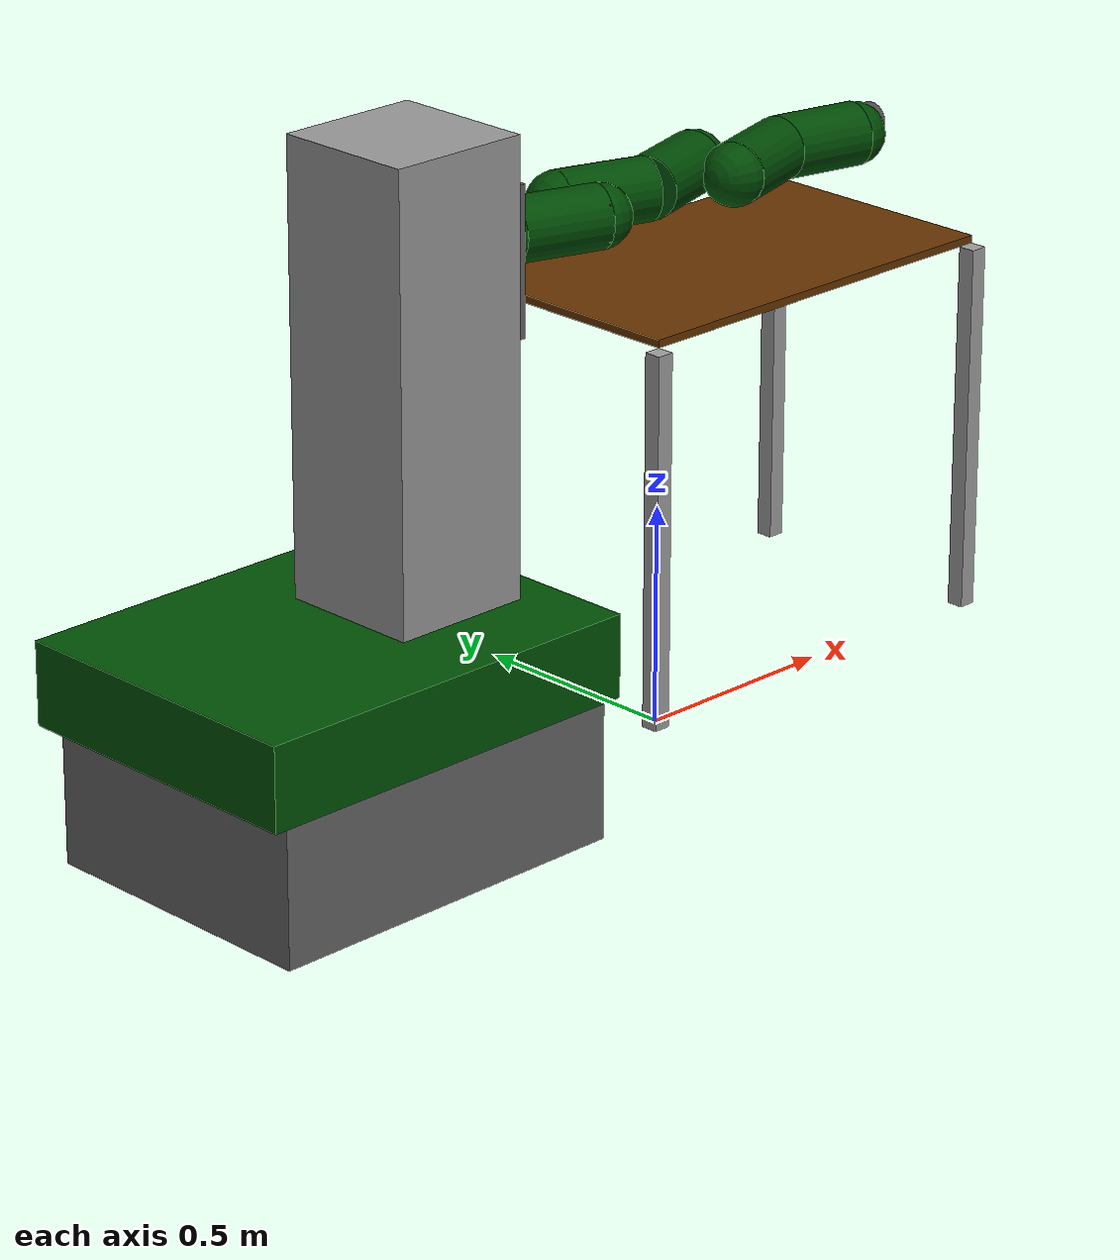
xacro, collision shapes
<?xml version="1.0"?>
<robot xmlns:xacro="http://www.ros.org/wiki/xacro" name="ics_lwr_enviroment">

    <!-- Include all models -->
    <xacro:include filename="$(find lwr_description)/model/kuka_lwr.urdf.xacro"/>

    <!-- CONSTANTS -->
    <xacro:property name="PI" value="3.14159265359" />

    <material name="Grey1">
        <color rgba="0.4 0.4 0.4 1.0"/>
    </material>

    <material name="Grey2">
        <color rgba="0.6 0.6 0.6 1.0"/>
    </material>

    <material name="DarkGreen1">
        <color rgba="0.0 0.32 0.02 1.0"/>
    </material>

    <!-- world -->
    <link name="world"/>

    <!-- table -->
	<xacro:property name="world_origin_x" value="0.0" />
	<xacro:property name="world_origin_y" value="0.0" />
	<xacro:property name="world_origin_z" value="0.0" />

	<!-- table properties -->
	<xacro:property name="table_height" value="0.878" />
	<xacro:property name="table_width" value="1.0" />
	<xacro:property name="table_depth" value="0.60" />
	<xacro:property name="table_top_thickness" value="0.018"/>

	<xacro:property name="table_origin_x" value="${world_origin_x + table_width/2}" />
	<xacro:property name="table_origin_y" value="${world_origin_y + table_depth/2}" />
	<xacro:property name="table_origin_z" value="${world_origin_z - table_top_thickness/2}" />

	<xacro:property name="leg_edge" value="0.04" />
	<xacro:property name="leg_pos_x" value="${leg_edge/2}" />
	<xacro:property name="leg_pos_y" value="${leg_edge/2}" />
	<xacro:property name="leg_height" value="${table_height - table_top_thickness}" />
	<xacro:property name="leg_pos_z" value="${- table_top_thickness/2 - leg_height/2}" />

	<material name="table_color">
		<!-- dark brown -->
		<color rgba="${102/255} ${51/255} ${0/255} 1.0" />
	</material>
	<material name="leg_color">
		<!-- gray -->
		<color rgba="${160/255} ${160/255} ${160/255} 1.0" />
	</material>

	<!-- table board -->
	<joint name="table_joint" type="fixed" >
		<parent link="world" />
		<child link="workspace_base" />
		<origin xyz="${world_origin_x} ${world_origin_y} ${table_height}" />
	</joint>

	<link name="workspace_base">
		<visual>
			<origin xyz="${table_origin_x} ${table_origin_y} ${table_origin_z}" />
			<geometry>
				<box size="${table_width} ${table_depth} ${table_top_thickness}" />
			</geometry>
			<material name="table_color" />
		</visual>
		<collision>
			<origin xyz="${table_origin_x} ${table_origin_y} ${table_origin_z}" />
			<geometry>
				<box size="${table_width} ${table_depth} ${table_top_thickness}" />
			</geometry>
		</collision>
	</link>

	<!-- legs -->
	<joint name="leg_joint_1" type="fixed" >
		<parent link="workspace_base" />
		<child link="leg_link_1" />
		<origin xyz="0 0 ${table_origin_z}" />
	</joint>

	<link name="leg_link_1">
		<visual>
			<origin xyz="${leg_pos_x} ${leg_pos_y} ${leg_pos_z}" />
			<geometry>
				<box size="${leg_edge} ${leg_edge} ${leg_height}" />
			</geometry>
			<material name="leg_color" />
		</visual>
		<collision>
			<origin xyz="${- leg_pos_x} ${- leg_pos_y} ${leg_pos_z}" />
			<geometry>
				<box size="${leg_edge} ${leg_edge} ${leg_height}" />
			</geometry>
		</collision>
	</link>

	<joint name="leg_joint_2" type="fixed" >
		<parent link="workspace_base" />
		<child link="leg_link_2" />
		<origin xyz="${table_width} 0 ${table_origin_z}" />
	</joint>

	<link name="leg_link_2">
		<visual>
			<origin xyz="${- leg_pos_x} ${leg_pos_y} ${leg_pos_z}" />
			<geometry>
				<box size="${leg_edge} ${leg_edge} ${leg_height}" />
			</geometry>
			<material name="leg_color" />
		</visual>
		<collision>
			<origin xyz="${- leg_pos_x} ${- leg_pos_y} ${leg_pos_z}" />
			<geometry>
				<box size="${leg_edge} ${leg_edge} ${leg_height}" />
			</geometry>
		</collision>
	</link>

	<joint name="leg_joint_3" type="fixed" >
		<parent link="workspace_base" />
		<child link="leg_link_3" />
		<origin xyz="${table_width} ${table_depth} ${table_origin_z}" />
	</joint>

	<link name="leg_link_3">
		<visual>
			<origin xyz="${- leg_pos_x} ${- leg_pos_y} ${leg_pos_z}" />
			<geometry>
				<box size="${leg_edge} ${leg_edge} ${leg_height}" />
			</geometry>
			<material name="leg_color" />
		</visual>
		<collision>
			<origin xyz="${- leg_pos_x} ${- leg_pos_y} ${leg_pos_z}" />
			<geometry>
				<box size="${leg_edge} ${leg_edge} ${leg_height}" />
			</geometry>
		</collision>
	</link>

	<joint name="leg_joint_4" type="fixed" >
		<parent link="workspace_base" />
		<child link="leg_link_4" />
		<origin xyz="0 ${table_depth} ${table_origin_z}" />
	</joint>

	<link name="leg_link_4">
		<visual>
			<origin xyz="${leg_pos_x} ${- leg_pos_y} ${leg_pos_z}" />
			<geometry>
				<box size="${leg_edge} ${leg_edge} ${leg_height}" />
			</geometry>
			<material name="leg_color" />
		</visual>
		<collision>
			<origin xyz="${- leg_pos_x} ${- leg_pos_y} ${leg_pos_z}" />
			<geometry>
				<box size="${leg_edge} ${leg_edge} ${leg_height}" />
			</geometry>
		</collision>
	</link>

	<!-- robot platform -->

    <!-- platform_lower -->
    <xacro:property name="platform_lower_size_x" value="0.680" />
    <xacro:property name="platform_lower_size_y" value="0.865" />
    <xacro:property name="platform_lower_size_z" value="0.315" />
    <xacro:property name="platform_lower_origin_x" value="${platform_lower_size_x/2}" />
    <xacro:property name="platform_lower_origin_y" value="${platform_lower_size_y/2}" />
    <xacro:property name="platform_lower_origin_z" value="${platform_lower_size_z/2}" />

    <link name="platform_lower">
        <inertial>
            <mass value="10.0"/>
            <origin rpy="0 0 0" xyz="0 0 0"/>
            <inertia ixx="0.01" iyy="0.01" izz="0.01" ixy="0" iyz="0" ixz="0"/>
        </inertial>
        <visual>
            <origin xyz="${platform_lower_origin_x} ${platform_lower_origin_y} ${platform_lower_origin_z}" rpy="0 0 0"/>
            <geometry>
                <box size="${platform_lower_size_x} ${platform_lower_size_y} ${platform_lower_size_z}"/>
            </geometry>
            <material name="Grey1"> </material>
        </visual>
        <collision>
            <origin xyz="${platform_lower_origin_x} ${platform_lower_origin_y} ${platform_lower_origin_z}" rpy="0 0 0"/>
            <geometry>
                <box size="${platform_lower_size_x} ${platform_lower_size_y} ${platform_lower_size_z}"/>
            </geometry>
        </collision>
    </link>

    <!-- fix platform_lower to world -->
    <xacro:property name="platform_world_x" value="-0.5" />
    <xacro:property name="platform_world_y" value="${-platform_lower_size_x/2}" />
    <xacro:property name="platform_world_z" value="0.0" />

    <joint name="platform_lower_to_world" type="fixed">
        <origin xyz="${platform_world_x} ${platform_world_y} ${platform_world_z}" rpy="0.000 0.000 ${PI/2}"/>
        <parent link="world"/>
        <child link="platform_lower"/>
    </joint>

    <!-- platform_upper -->
    <xacro:property name="platform_upper_size_x" value="0.720" />
    <xacro:property name="platform_upper_size_y" value="0.935" />
    <xacro:property name="platform_upper_size_z" value="0.185" />
    <xacro:property name="platform_upper_origin_x" value="${platform_upper_size_x/2}" />
    <xacro:property name="platform_upper_origin_y" value="${platform_upper_size_y/2}" />
    <xacro:property name="platform_upper_origin_z" value="${platform_upper_size_z/2}" />

    <link name="platform_upper">
        <inertial>
            <mass value="10.0"/>
            <origin rpy="0 0 0" xyz="0 0 0"/>
            <inertia ixx="0.01" iyy="0.01" izz="0.01" ixy="0" iyz="0" ixz="0"/>
        </inertial>
        <visual>
            <origin xyz="${platform_upper_origin_x} ${platform_upper_origin_y} ${platform_upper_origin_z}" rpy="0 0 0"/>
            <geometry>
                <box size="${platform_upper_size_x} ${platform_upper_size_y} ${platform_upper_size_z}"/>
            </geometry>
            <material name="DarkGreen1"> </material>
        </visual>
        <collision>
            <origin xyz="${platform_upper_origin_x} ${platform_upper_origin_y} ${platform_upper_origin_z}" rpy="0 0 0"/>
            <geometry>
                <box size="${platform_upper_size_x} ${platform_upper_size_y} ${platform_upper_size_z}"/>
            </geometry>
        </collision>
    </link>

    <!-- fix platform_upper to platform_lower -->
    <joint name="platform_lower_to_platform_upper" type="fixed">
        <origin xyz="-0.020 -0.025 ${platform_lower_size_z}" rpy="0.000 0.000 0.000"/>
        <parent link="platform_lower"/>
        <child link="platform_upper"/>
    </joint>

    <!-- frame -->
    <xacro:property name="frame_size_x" value="0.325" />
    <xacro:property name="frame_size_y" value="0.325" />
    <xacro:property name="frame_size_z" value="0.990" />
    <xacro:property name="frame_origin_x" value="${frame_size_x/2}" />
    <xacro:property name="frame_origin_y" value="${frame_size_y/2}" />
    <xacro:property name="frame_origin_z" value="${frame_size_z/2}" />

    <link name="frame">
        <inertial>
            <mass value="10.0"/>
            <origin rpy="0 0 0" xyz="0 0 0"/>
            <inertia ixx="0.01" iyy="0.01" izz="0.01" ixy="0" iyz="0" ixz="0"/>
        </inertial>
        <visual>
            <origin xyz="${frame_origin_x} ${frame_origin_y} ${frame_origin_z}" rpy="0 0 0"/>
            <geometry>
                <box size="${frame_size_x} ${frame_size_y} ${frame_size_z}"/>
            </geometry>
            <material name="Grey2"> </material>
        </visual>
        <collision>
            <origin xyz="${frame_origin_x} ${frame_origin_y} ${frame_origin_z}" rpy="0 0 0"/>
            <geometry>
                <box size="${frame_size_x} ${frame_size_y} ${frame_size_z}"/>
            </geometry>
        </collision>
    </link>

    <!-- attach frame to platform_upper -->
    <joint name="frame_to_platform_upper" type="fixed">
        <origin xyz="0.1975 0.09 ${platform_upper_size_z}" rpy="0.000 0.000 0.000"/>
        <parent link ="platform_upper" />
        <child link ="frame" />
    </joint>

    <!-- panel -->
    <xacro:property name="panel_size_x" value="${frame_size_x}" />
    <xacro:property name="panel_size_y" value="0.015" />
    <xacro:property name="panel_size_z" value="${frame_size_x}" />
    <xacro:property name="panel_origin_x" value="${panel_size_x/2}" />
    <xacro:property name="panel_origin_y" value="${panel_size_y/2}" />
    <xacro:property name="panel_origin_z" value="${panel_size_z/2}" />

    <link name="panel">
        <inertial>
            <mass value="10.0"/>
            <origin rpy="0 0 0" xyz="0 0 0"/>
            <inertia ixx="0.01" iyy="0.01" izz="0.01" ixy="0" iyz="0" ixz="0"/>
        </inertial>
        <visual>
            <origin xyz="${panel_origin_x} ${panel_origin_y} ${panel_origin_z}" rpy="0 0 0"/>
            <geometry>
                <box size="${panel_size_x} ${panel_size_y} ${panel_size_z}"/>
            </geometry>
            <material name="Grey1"> </material>
        </visual>
        <collision>
            <origin xyz="${panel_origin_x} ${panel_origin_y} ${panel_origin_z}" rpy="0 0 0"/>
            <geometry>
                <box size="${panel_size_x} ${panel_size_y} ${panel_size_z}"/>
            </geometry>
        </collision>
    </link>

    <!-- attach panel to frame -->
    <joint name="panel_to_frame" type="fixed">
        <origin xyz="0.000 -${panel_size_y} 0.560" rpy="0.000 0.000 0.000"/>
        <parent link ="frame" />
        <child link ="panel" />
    </joint>

    <!-- reference stage to gazebo -->
    <gazebo reference="panel">
        <static>true</static>>
    </gazebo>

    <!-- connect framework with robot -->
    <xacro:property name="robot_origin_x" value="${panel_origin_x}" />
    <xacro:property name="robot_origin_y" value="${panel_origin_y - panel_size_y/2}" />
    <xacro:property name="robot_origin_z" value="${panel_origin_z}" />
    <xacro:property name="robotOriginR" value="${PI/2}" />
    <xacro:property name="robotOriginP" value="${-PI/2}" />
    <xacro:property name="robot_origin_yaw" value="0" />

    <xacro:kuka_lwr parent="panel" name="lwr">
        <origin xyz="${robot_origin_x} ${robot_origin_y} ${robot_origin_z}" rpy="${robotOriginR} ${robotOriginP} ${robot_origin_yaw}"/>
    </xacro:kuka_lwr>

</robot>

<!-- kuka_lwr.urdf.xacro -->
<robot name="kuka_lwr" xmlns:xacro="http://www.ros.org/wiki/xacro">

	<!-- utils /-->
	<xacro:include filename="$(find lwr_description)/model/utils.xacro"/>
	<xacro:include filename="$(find lwr_description)/model/kuka_materials.xacro"
	/>

	<!-- gazebo and transmission models /-->
	<xacro:include filename="$(find lwr_description)/model/kuka_lwr.gazebo.xacro"/>
	<xacro:include filename="$(find lwr_description)/model/kuka_lwr.transmission.xacro"/>

	<!-- properties /-->
        <xacro:property name="base_mass" value="2.0"/>
        <xacro:property name="link_mass" value="2.35"/>
        <xacro:property name="wrist_mass" value="2.1"/>
        <xacro:property name="tip_mass" value="2.25"/>
        <xacro:property name="velocity_scale" value="0.15"/>
        <xacro:property name="effort_scale" value="1"/>

        <xacro:property name="max_stiffness" value="5000"/>
        <xacro:property name="min_stiffness" value="0"/>
        <xacro:property name="rate_stiffness" value="20000"/> <!-- reflex to stiffness -->

	<!-- URDF model /-->
	<xacro:macro name="kuka_lwr" params="parent name *origin">

            <!-- First (shoulder) element of the arm. Fixed to its parent. -->
            <joint name="${parent}_${name}_base_joint" type="fixed">
                <xacro:insert_block name="origin"/>
                <origin xyz="0 0 0" rpy="0 0 0"/>
                <parent link="${parent}"/>
                <child link="${name}_base_link"/>
            </joint>

            <link name="${name}_base_link">
                <inertial>
                    <mass value="${base_mass}"/>
                    <origin xyz="0 0 0.055"  />
                    <cylinder_inertia_def radius="0.06" length="0.11" mass="${base_mass}"/>
                </inertial>

                <visual>
                    <origin xyz="0 0 0" rpy="0 0 ${M_PI}"/>
                    <geometry>
                        <mesh filename="package://lwr_description/meshes/visual/base.STL"/>
                    </geometry>
                    <material name="Kuka/DarkGreen"/>
                </visual>

                <collision>
                    <origin xyz="0 0 0.055" rpy="0 0 ${M_PI}"/>
                    <geometry>
                        <cylinder radius="0.07" length="0.11"/>
                    </geometry>
                </collision>
            </link>

            <!-- Second segment of the arm. Joint along z-axis -->
            <joint name="${name}_a1_joint" type="revolute">
                    <origin xyz="0 0 0.11" rpy="0 0 0"/>
                    <axis xyz="0 0 1"/>
                    <limit lower="${-170 * M_PI / 180}" upper="${170 * M_PI / 180}" effort="176" velocity="${velocity_scale * 110 * M_PI / 180}" />
                    <dynamics friction="10.0" damping="1.0"/>
                    <parent link="${name}_base_link"/>
                    <child link="${name}_a1_link"/>
            </joint>

            <link name="${name}_a1_link">
                <inertial>
                    <mass value="${link_mass}"/>
                    <origin rpy="0 0 0" xyz="0 -0.06 0.130"/>
                    <cuboid_inertia_def length="0.12" width="0.06" height="0.260" mass="${link_mass}"/>
                </inertial>

                <visual>
                    <origin xyz="0 0 -0.008" rpy="0 0 ${M_PI}"/>
                    <geometry>
                        <mesh filename="package://lwr_description/meshes/visual/link_1.STL"/>
                    </geometry>
                    <material name="Kuka/DarkGreen"/>
                </visual>

                <collision>
                    <origin xyz="0 0.06 0.2" rpy="0 0 0"/>
                    <geometry>
                        <sphere radius="0.07"/>
                    </geometry>
                </collision>

                <collision>
                    <origin xyz="0 0.03 0.1" rpy="-0.291 0 0"/>
                    <geometry>
                         <cylinder radius="0.07" length="0.208"/>
                    </geometry>
                </collision>
            </link>

            <joint name="${name}_a2_joint" type="revolute">
                    <origin xyz="0 0 0.2005" rpy="0 0 0"/>
                    <axis xyz="0 -1 0"/>
                    <limit lower="${-170 * M_PI / 180}" upper="${170 * M_PI / 180}" effort="176" velocity="${velocity_scale * 110 * M_PI / 180}" />
                    <dynamics friction="10.0" damping="1.0"/>
                    <parent link="${name}_a1_link"/>
                    <child link="${name}_a2_link"/>
            </joint>

            <link name="${name}_a2_link">
                    <inertial>
                        <mass value="${link_mass}"/>
                        <origin xyz="0 0.06 ${0.130 - 0.06}" rpy="0 0 0" />
                        <cuboid_inertia_def length="0.12" width="0.06" height="0.260" mass="${link_mass}"/>
                    </inertial>

                    <visual>
                        <origin xyz="0 0 0.0" rpy="0 0 ${M_PI}"/>
                        <geometry>
                             <mesh filename="package://lwr_description/meshes/visual/link_2.STL"/>
                        </geometry>
                        <material name="Kuka/DarkGreen"/>
                    </visual>

                    <collision>
                        <origin xyz="0 -0.06 0.0" rpy="0 0 0"/>
                        <geometry>
                            <sphere radius="0.07"/>
                        </geometry>
                    </collision>
                    <collision>
                        <origin xyz="0 -0.03 0.1" rpy="-0.291 0 0"/>
                        <geometry>
                            <cylinder radius="0.07" length="0.208"/>
                        </geometry>
                    </collision>
		</link>

            <!-- Fourth element of the arm. z-axis -->
            <joint name="${name}_e1_joint" type="revolute">
                <origin xyz="0 0 0.20" rpy="0 0 0"/>
                <axis xyz="0 0 1"/>
                <limit lower="${-170 * M_PI / 180}" upper="${170 * M_PI / 180}" effort="100" velocity="${velocity_scale * 128 * M_PI / 180}" />
                <dynamics friction="10.0" damping="1.0"/>
                <parent link="${name}_a2_link"/>
                <child link="${name}_e1_link"/>
            </joint>

            <link name="${name}_e1_link">
                    <inertial>
                        <mass value="${link_mass}"/>
                        <origin rpy="0 0 0" xyz="0 0.06 0.130"/>
                        <cuboid_inertia_def length="0.12" width="0.06" height="0.260" mass="${link_mass}"/>
                    </inertial>

                    <visual>
                        <origin xyz="0 0 -0.008" rpy="0 0 ${M_PI}"/>
                        <geometry>
                             <mesh filename="package://lwr_description/meshes/visual/link_3.STL"/>
                        </geometry>
                        <material name="Kuka/DarkGreen"/>
                    </visual>
                    <collision>
                        <origin xyz="0 -0.06 0.2" rpy="0 0 0"/>
                        <geometry>
                            <sphere radius="0.07"/>
                        </geometry>
                    </collision>
                    <collision>
                        <origin xyz="0 -0.03 0.1" rpy="0.291 0 0"/>
                        <geometry>
                            <cylinder radius="0.07" length="0.208"/>
                        </geometry>
                    </collision>
            </link>

            <!-- Fifth element of the arm. x-axis -->
            <joint name="${name}_a3_joint" type="revolute">
                <origin xyz="0 0 0.20" rpy="0 0 0"/>
                <axis xyz="0 1 0"/>
                <limit lower="${-120 * M_PI / 180}" upper="${120 * M_PI / 180}" effort="100" velocity="${velocity_scale * 128 * M_PI / 180}" />
                <dynamics friction="10.0" damping="1.0"/>
                <parent link="${name}_e1_link"/>
                <child link="${name}_a3_link"/>
            </joint>

            <link name="${name}_a3_link">
                <inertial>
                    <mass value="${link_mass}"/>
                    <origin rpy="0 0 0" xyz="0 -0.06 ${0.130 - 0.06}"/>
                    <cuboid_inertia_def length="0.12" width="0.06" height="0.2600" mass="${link_mass}"/>
                </inertial>
                <visual>
                    <origin xyz="0 0 0.0" rpy="0 0 ${M_PI}"/>
                    <geometry>
                        <mesh filename="package://lwr_description/meshes/visual/link_4.STL"/>
                    </geometry>
                    <material name="Kuka/DarkGreen"/>
                </visual>
                <collision>
                    <origin xyz="0 0.06 0.0" rpy="0 0 0"/>
                    <geometry>
                        <sphere radius="0.07"/>
                    </geometry>
                </collision>
                <collision>
                    <origin xyz="0 0.03 0.1" rpy="0.291 0 0"/>
                    <geometry>
                        <cylinder radius="0.07" length="0.208"/>
                    </geometry>
                </collision>
            </link>

            <!-- Sixth element of the arm. z-axis -->
            <joint name="${name}_a4_joint" type="revolute">
                <origin xyz="0 0 0.20" rpy="0 0 0"/>
                <axis xyz="0 0 1"/>
                <limit lower="${-170 * M_PI / 180}" upper="${170 * M_PI / 180}" effort="100" velocity="${velocity_scale * 204 * M_PI / 180}" />
                <dynamics friction="10.0" damping="1.0"/>
                <parent link="${name}_a3_link"/>
                <child link="${name}_a4_link"/>
            </joint>

            <link name="${name}_a4_link">
                <inertial>
                    <mass value="${link_mass}"/>
                    <origin rpy="0 0 0" xyz="0 0 0.124"/>
                    <cuboid_inertia_def length="0.12" width="0.06" height="0.248" mass="${link_mass}"/>
                </inertial>

                <visual>
                    <origin xyz="0 0 -0.008" rpy="0 0 ${M_PI}"/>
                    <geometry name="${name}_5_geom">
                        <mesh filename="package://lwr_description/meshes/visual/link_5.STL"/>
                    </geometry>
                    <material name="Kuka/DarkGreen"/>
                </visual>

                <collision>
                	<origin xyz="0 0.04 0.19" rpy="0 0 0"/>
                    <geometry>
                    	<sphere radius="0.07"/>
                	</geometry>
                </collision>
                <collision>
                    <origin xyz="0 0.02 0.095" rpy="-0.207 0 0"/>
                    <geometry>
                        <cylinder radius="0.07" length="0.198"/>
                    </geometry>
                </collision>
            </link>

            <!-- Seventh element of the arm. z-axis -->
            <joint name="${name}_a5_joint" type="revolute">
                <origin xyz="0 0 0.19" rpy="0 0 0"/>
                <axis xyz="0 -1 0"/>
                <limit lower="${-130 * M_PI / 180}" upper="${130 * M_PI / 180}" effort="38" velocity="${velocity_scale * 184 * M_PI / 180}" />
                <dynamics friction="10.0" damping="1.0"/>
                <parent link="${name}_a4_link"/>
                <child link="${name}_a5_link"/>
            </joint>

            <link name="${name}_a5_link">
                <inertial>
                    <mass value="${wrist_mass}"/>
                    <origin rpy="0 0 0" xyz="0 0 0.0625"/>
                    <cuboid_inertia_def length="0.125" width="0.125" height="0.125" mass="${wrist_mass}"/>
                </inertial>

                <visual>
                    <origin xyz="0 0 0" rpy="0 0 ${M_PI}"/>
                    <geometry>
                        <mesh filename="package://lwr_description/meshes/visual/link_6.STL"/>
                    </geometry>
                    <material name="Kuka/Grey"/>
                </visual>
            </link>

            <!-- Eighth element of the arm. z-axis -->
            <joint name="${name}_a6_joint" type="revolute">
                <origin xyz="0 0 0.078" rpy="0 0 0"/>
                <axis xyz="0 0 1"/>
                <limit lower="${-170 * M_PI / 180}" upper="${170 * M_PI / 180}" effort="38" velocity="${velocity_scale * 184 * M_PI / 180}" />
                <dynamics friction="10.0" damping="1.0"/>
                <parent link="${name}_a5_link"/>
                <child link="${name}_a6_link"/>
            </joint>

            <link name="${name}_a6_link">
                <inertial>
                    <mass value="${tip_mass}"/>
                    <origin xyz="0 0 0"/>
                    <cuboid_inertia_def length="0.1" width="0.1" height="0.1" mass="${tip_mass}"/>
                </inertial>

                <visual>
                    <origin xyz="0 0 0" rpy="0 0 ${M_PI}"/>
                    <geometry>
                        <mesh filename="package://lwr_description/meshes/visual/link_7.STL"/>
                    </geometry>
                    <material name="Kuka/DarkGrey"/>
                </visual>

                <collision>
                    <origin xyz="0 0 0" rpy="0 0 ${M_PI}"/>
                    <geometry>
                        <cylinder radius="0.04" length="0.05"/>
                    </geometry>
                </collision>
            </link>

            <xacro:kuka_lwr_gazebo name="${name}"/>
            <xacro:kuka_lwr_transmission name="${name}"/>

	</xacro:macro>

</robot>

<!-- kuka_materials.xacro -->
<robot xmlns:xacro="http://www.ros.org/wiki/xacro">
  <material name="Kuka/DarkGrey">
    <color rgba="0.3 0.3 0.3 1.0"/>
  </material>

  <material name="Kuka/LightGrey">
    <color rgba="0.8 0.8 0.8 1.0"/>
  </material>

  <material name="Kuka/Red">
    <color rgba="0.3 0.3 0.3 1.0"/>
  </material>

  <material name="Kuka/Black">
    <color rgba="0 0 0 1.0"/>
  </material>

  <material name="Kuka/Orange">
    <color rgba="1.0 0.487 0 1.0"/>
  </material>

  <material name="Kuka/Silver">
    <color rgba="1.0 1.0 1.0 1.0"/>
  </material>

  <material name="Kuka/Grey">
    <color rgba="0.7 0.7 0.7 1.0"/>
  </material>

  <material name="Kuka/Blue">
    <color rgba="0.0 0.0 0.8 1.0"/>
  </material>

  <material name="Kuka/DarkGreen">
    <color rgba="0.0 0.29 0.02 1.0"/>
  </material>

</robot>
